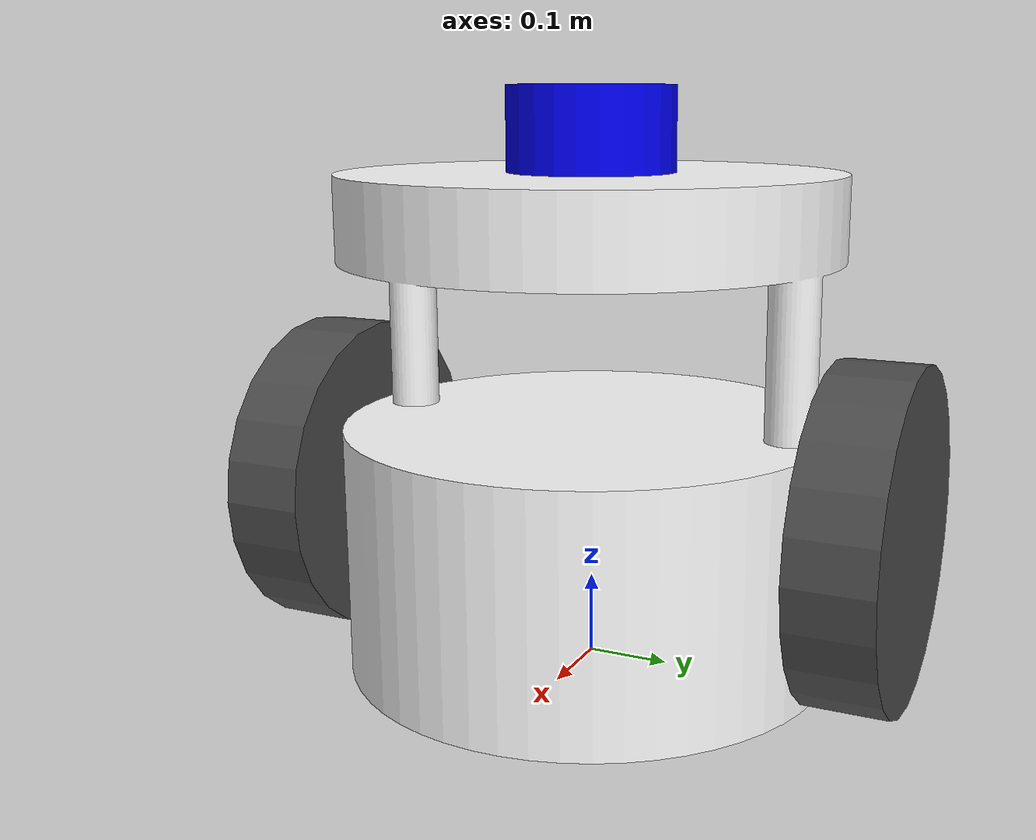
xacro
<?xml version="1.0"?>
<robot name="ifooddifbotv1" xmlns:xacro="http://www.ros.org/wiki/xacro" >

    <!-- Color of Material -->
  <material name="white">
    <color rgba="1 1 1 1"/>
  </material>

  <material name="grey">
    <color rgba="0.3 0.3 0.3 1"/>
  </material>

  <material name="skyblue">
    <color rgba="0 0 1 1"/>
  </material>

   <!-- Add Base Pose -->
    <link name = "base_link">
        <visual>
            <origin xyz = "0 0 0" rpy = "0 0 0"/>
            <geometry>
                <mesh filename="package://my_robosim_project/meshes/base_link.stl"/>
            </geometry>
            <material name="white"/>
        </visual>
        <inertial>
            <mass value="1"/>
            <inertia ixx="0.001" ixy="0.0" ixz="0.0" iyy="0.001" iyz="0" izz="0.001"/>
        </inertial>
        <collision>
            <origin xyz = "0 0 0" rpy = "0 0 0"/>
            <geometry>
                 <mesh filename="package://my_robosim_project/meshes/base_link.stl"/>
            </geometry>
        </collision>
    </link>

   <!-- Add Left Wheel Pose -->
    <link name = "left_wheel_link">
        <visual>
            <origin xyz = "0 0 0" rpy = "-1.5708 0 0"/>
            <geometry>
                <cylinder radius = "0.2" length = "0.1"/>
            </geometry>
            <material name="grey"/>
        </visual>
        <inertial>
            <mass value="0.1"/>
            <inertia ixx="0.001" ixy="0.0" ixz="0.0" iyy="0.001" iyz="0" izz="0.001"/>
        </inertial>
         <collision>
            <origin xyz = "0 0 0" rpy = "-1.5708 0 0"/>
            <geometry>
                <cylinder radius = "0.2" length = "0.1"/>
            </geometry>
        </collision>
    </link>

   <!-- Add Parent-Child Link between Base and Left Wheel-->
    <joint name = "left_wheel_joint" type = "continuous">
        <origin xyz = "0 0.35 0.2" rpy = "0 0 0"/>
        <parent link = "base_link"/>
        <child link = "left_wheel_link"/>
        <limit effort = "30" velocity="10"/>
        <axis rpy="0 0 0" xyz = "0 1 0"/>
    </joint>

    <link name = "right_wheel_link">
        <visual>
            <origin xyz = "0 0 0" rpy = "-1.5708 0 0"/>
            <geometry>
                <cylinder radius = "0.2" length = "0.1"/>
            </geometry>
            <material name="grey"/>
        </visual>
        <inertial>
            <mass value="0.1"/>
            <inertia ixx="0.001" ixy="0.0" ixz="0.0" iyy="0.001" iyz="0" izz="0.001"/>
        </inertial>
         <collision>
            <origin xyz = "0 0 0" rpy = "-1.5708 0 0"/>
            <geometry>
                <cylinder radius = "0.2" length = "0.1"/>
            </geometry>
        </collision>
    </link>

   <!-- Add Parent-Child Link between Base and Right Wheel-->
    <joint name = "right_wheel_joint" type = "continuous">
        <origin xyz = "0 -0.35 0.2" rpy = "0 0 0"/>
        <parent link = "base_link"/>
        <child link = "right_wheel_link"/>
        <limit effort = "30" velocity="10"/>
        <axis rpy="0 0 0" xyz = "0 1 0"/>
    </joint>

   <!-- Add LiDAR Sensor Pose -->
    <link name = "lidar_on_base_link">
        <visual>
            <origin xyz = "0 0 0" rpy = "0 0 0"/>
            <geometry>
                <cylinder radius = "0.1" length = "0.1"/>
            </geometry>
            <material name="skyblue"/>
        </visual>
        <inertial>
            <mass value="0.1"/>
            <inertia ixx="0.001" ixy="0.0" ixz="0.0" iyy="0.001" iyz="0" izz="0.001"/>
        </inertial>
        <collision>
            <origin xyz = "0 0 0" rpy = "0 0 0"/>
            <geometry>
                 <cylinder radius = "0.1" length = "0.1"/>
            </geometry>
        </collision>
    </link>

   <!-- Add Parent-Child Link between Base and LiDAR-->
    <joint name = "lidar_on_base_joint" type = "fixed">
        <origin xyz = "0 0 0.65" rpy = "0 0 0"/>
        <parent link = "base_link"/>
        <child link = "lidar_on_base_link"/>
        <limit effort = "0" velocity="0"/>
        <axis rpy="0 0 0" xyz = "0 0 0"/>
    </joint>

    <!-- Paint Base Link Color -->
    <gazebo reference="base_link">
        <material>Gazebo/White</material>
    </gazebo>

    <!-- Paint Left Wheel Link Color -->
    <gazebo reference="left_wheel_link">
        <material>Gazebo/Grey</material>
        <mu1 value ="10000"/>
        <mu2 value = "10000"/>
    </gazebo>

    <!-- Paint Right Wheel Link Color -->
    <gazebo reference="right_wheel_link">
        <material>Gazebo/Grey</material>-->
        <mu1 value ="10000"/>
        <mu2 value = "10000"/>
    </gazebo>

    <!-- Paint LiDAR Sensor Link Color -->
    <gazebo reference="lidar_on_base_link">
        <material>Gazebo/SkyBlue</material>
    </gazebo>

    <!--Installing Differential Drive Controller Plugin-->
     <gazebo>
        <plugin name="differential_drive_controller" filename="libgazebo_ros_diff_drive.so">
        <alwaysOn>true</alwaysOn>
        <updateRate>20</updateRate>
        <leftJoint>left_wheel_joint</leftJoint>
        <rightJoint>right_wheel_joint</rightJoint>
        <wheelSeparation>0.7</wheelSeparation>
        <wheelDiameter>0.4</wheelDiameter>
        <torque>1</torque>
        <commandTopic>cmd_vel</commandTopic>
        <odometryTopic>odom</odometryTopic>
        <odometryFrame>odom</odometryFrame>
        <robotBaseFrame>base_link</robotBaseFrame>
        <publishWheelTF>false</publishWheelTF>
        <publishWheelJointState>false</publishWheelJointState>
        <rosDebugLevel>na</rosDebugLevel>
        <wheelAcceleration>0</wheelAcceleration>
        <wheelTorque>1</wheelTorque>
        <odometrySource>world</odometrySource>
        <publishOdomTF>true</publishOdomTF>
        <publishTf>1</publishTf>
        </plugin>
    </gazebo>

    <gazebo>
    <plugin name="gazebo_ros_control" filename="libgazebo_ros_control.so">
        <robotNamespace>/ifooddifbotv1</robotNamespace>
    </plugin>
    </gazebo>

    <!--Installing LiDAR Sensor-->
    <gazebo reference="lidar_on_base_link">
        <sensor type="ray" name="ifooddifbot_laser_sensor">
        <pose>0 0 0 0 0 0</pose>
        <visualize>false</visualize>
        <update_rate>20</update_rate>
        <ray>
         <scan>
            <horizontal>
                <samples>720</samples>
                <resolution>1</resolution>
                <min_angle>-3.14</min_angle>
                <max_angle>3.14</max_angle>
            </horizontal>
        </scan>
        <range>
             <min>0.2</min>
             <max>10.0</max>
             <resolution>0.01</resolution>
        </range>
        <noise>
              <type>gaussian</type>
              <mean>0.0</mean>
              <stddev>0.01</stddev>
        </noise>
        </ray>
        <plugin name="gazebo_ros_head_hokuyo_controller" filename="libgazebo_ros_laser.so">
        <topicName>/ifooddifbotv1/laser/scan</topicName>
        <frameName>lidar_on_base_link</frameName>
      </plugin>
    </sensor>
  </gazebo>

    <!--Installing IMU Sensor-->
  <gazebo reference="base_link">
    <gravity>true</gravity>
    <sensor name="ifooddifbot_imu_sensor" type="imu">
      <always_on>true</always_on>
      <update_rate>100</update_rate>
      <visualize>true</visualize>
      <topic>__default_topic__</topic>
      <plugin filename="libgazebo_ros_imu_sensor.so" name="imu_plugin">
        <topicName>ifooddifbotv1/imu</topicName>
        <bodyName>base_link</bodyName>
        <updateRateHZ>10.0</updateRateHZ>
        <gaussianNoise>0.0</gaussianNoise>
        <xyzOffset>0 0 0</xyzOffset>
        <rpyOffset>0 0 0</rpyOffset>
        <frameName>base_links</frameName>
        <initialOrientationAsReference>false</initialOrientationAsReference>
      </plugin>
      <pose>0 0 0 0 0 0</pose>
    </sensor>
  </gazebo>
</robot>
